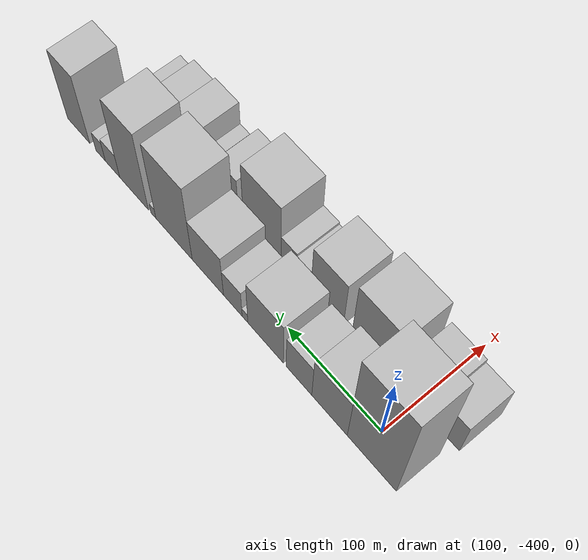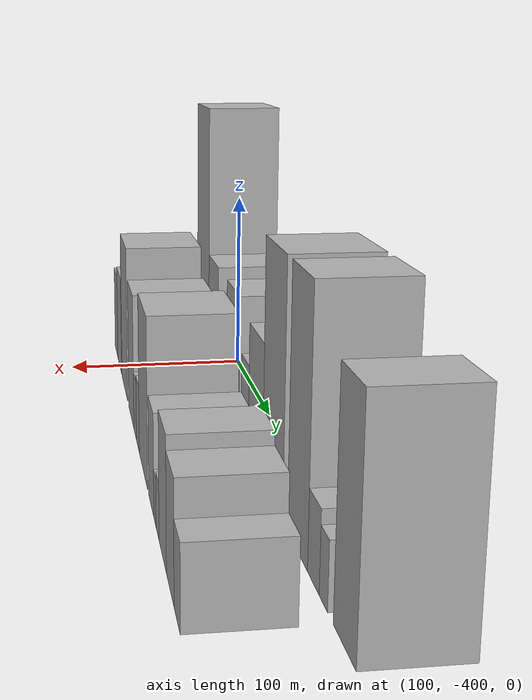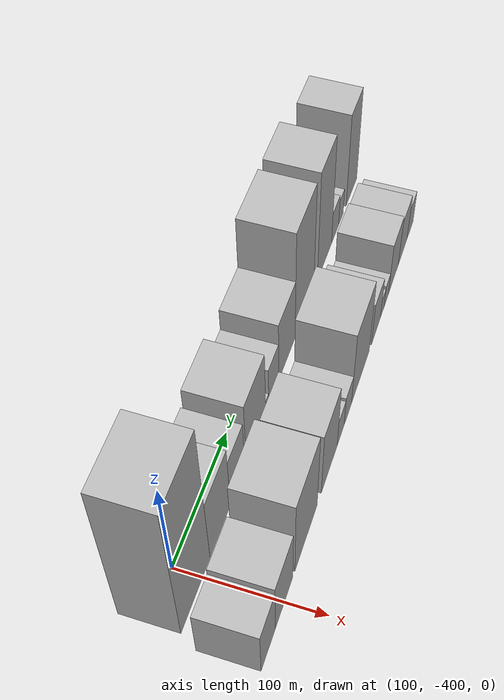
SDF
<sdf version="1.6">
 <world name="default">
  <model name="building_1">
   <static>1</static>
   <pose>100.0000 -411.8144 0 0.000000 0.000000 0.000000</pose>
   <link name="link">
    <pose>0 0 76.50 0 0 0</pose>
    <collision name="collision"><geometry><box><size>40.0000 50.3711 153.0000</size></box></geometry></collision>
    <visual name="visual">
     <cast_shadows>0</cast_shadows>
     <geometry><box><size>40.0000 50.3711 153.0000</size></box></geometry>
     <material>
      <script>
       <uri>model://HANNAS_wall/materials/scripts</uri>
       <uri>model://HANNAS_wall/materials/textures</uri>
       <name>vrc/HANNAS_wall</name>
      </script>
     </material>
    </visual>
   </link>
  </model>
  <model name="building_2">
   <static>1</static>
   <pose>100.0000 -367.8173 0 0.000000 0.000000 0.000000</pose>
   <link name="link">
    <pose>0 0 34.50 0 0 0</pose>
    <collision name="collision"><geometry><box><size>40.0000 37.6232 69.0000</size></box></geometry></collision>
    <visual name="visual">
     <cast_shadows>0</cast_shadows>
     <geometry><box><size>40.0000 37.6232 69.0000</size></box></geometry>
     <material>
      <script>
       <uri>model://HANNAS_wall/materials/scripts</uri>
       <uri>model://HANNAS_wall/materials/textures</uri>
       <name>vrc/HANNAS_wall</name>
      </script>
     </material>
    </visual>
   </link>
  </model>
  <model name="building_3">
   <static>1</static>
   <pose>100.0000 -335.0411 0 0.000000 0.000000 0.000000</pose>
   <link name="link">
    <pose>0 0 27.00 0 0 0</pose>
    <collision name="collision"><geometry><box><size>40.0000 27.9292 54.0000</size></box></geometry></collision>
    <visual name="visual">
     <cast_shadows>0</cast_shadows>
     <geometry><box><size>40.0000 27.9292 54.0000</size></box></geometry>
     <material>
      <script>
       <uri>model://HANNAS_wall/materials/scripts</uri>
       <uri>model://HANNAS_wall/materials/textures</uri>
       <name>vrc/HANNAS_wall</name>
      </script>
     </material>
    </visual>
   </link>
  </model>
  <model name="building_4">
   <static>1</static>
   <pose>100.0000 -298.1483 0 0.000000 0.000000 0.000000</pose>
   <link name="link">
    <pose>0 0 34.50 0 0 0</pose>
    <collision name="collision"><geometry><box><size>40.0000 39.8563 69.0000</size></box></geometry></collision>
    <visual name="visual">
     <cast_shadows>0</cast_shadows>
     <geometry><box><size>40.0000 39.8563 69.0000</size></box></geometry>
     <material>
      <script>
       <uri>model://HANNAS_wall/materials/scripts</uri>
       <uri>model://HANNAS_wall/materials/textures</uri>
       <name>vrc/HANNAS_wall</name>
      </script>
     </material>
    </visual>
   </link>
  </model>
  <model name="building_5">
   <static>1</static>
   <pose>100.0000 -274.9726 0 0.000000 0.000000 0.000000</pose>
   <link name="link">
    <pose>0 0 7.50 0 0 0</pose>
    <collision name="collision"><geometry><box><size>40.0000 6.4951 15.0000</size></box></geometry></collision>
    <visual name="visual">
     <cast_shadows>0</cast_shadows>
     <geometry><box><size>40.0000 6.4951 15.0000</size></box></geometry>
     <material>
      <script>
       <uri>model://HANNAS_wall/materials/scripts</uri>
       <uri>model://HANNAS_wall/materials/textures</uri>
       <name>vrc/HANNAS_wall</name>
      </script>
     </material>
    </visual>
   </link>
  </model>
  <model name="building_6">
   <static>1</static>
   <pose>100.0000 -261.0082 0 0.000000 0.000000 0.000000</pose>
   <link name="link">
    <pose>0 0 21.00 0 0 0</pose>
    <collision name="collision"><geometry><box><size>40.0000 21.4337 42.0000</size></box></geometry></collision>
    <visual name="visual">
     <cast_shadows>0</cast_shadows>
     <geometry><box><size>40.0000 21.4337 42.0000</size></box></geometry>
     <material>
      <script>
       <uri>model://HANNAS_wall/materials/scripts</uri>
       <uri>model://HANNAS_wall/materials/textures</uri>
       <name>vrc/HANNAS_wall</name>
      </script>
     </material>
    </visual>
   </link>
  </model>
  <model name="building_7">
   <static>1</static>
   <pose>100.0000 -231.8019 0 0.000000 0.000000 0.000000</pose>
   <link name="link">
    <pose>0 0 31.50 0 0 0</pose>
    <collision name="collision"><geometry><box><size>40.0000 36.9789 63.0000</size></box></geometry></collision>
    <visual name="visual">
     <cast_shadows>0</cast_shadows>
     <geometry><box><size>40.0000 36.9789 63.0000</size></box></geometry>
     <material>
      <script>
       <uri>model://HANNAS_wall/materials/scripts</uri>
       <uri>model://HANNAS_wall/materials/textures</uri>
       <name>vrc/HANNAS_wall</name>
      </script>
     </material>
    </visual>
   </link>
  </model>
  <model name="building_8">
   <static>1</static>
   <pose>100.0000 -191.1744 0 0.000000 0.000000 0.000000</pose>
   <link name="link">
    <pose>0 0 55.50 0 0 0</pose>
    <collision name="collision"><geometry><box><size>40.0000 44.2762 111.0000</size></box></geometry></collision>
    <visual name="visual">
     <cast_shadows>0</cast_shadows>
     <geometry><box><size>40.0000 44.2762 111.0000</size></box></geometry>
     <material>
      <script>
       <uri>model://HANNAS_wall/materials/scripts</uri>
       <uri>model://HANNAS_wall/materials/textures</uri>
       <name>vrc/HANNAS_wall</name>
      </script>
     </material>
    </visual>
   </link>
  </model>
  <model name="building_9">
   <static>1</static>
   <pose>100.0000 -165.9184 0 0.000000 0.000000 0.000000</pose>
   <link name="link">
    <pose>0 0 7.50 0 0 0</pose>
    <collision name="collision"><geometry><box><size>40.0000 6.2359 15.0000</size></box></geometry></collision>
    <visual name="visual">
     <cast_shadows>0</cast_shadows>
     <geometry><box><size>40.0000 6.2359 15.0000</size></box></geometry>
     <material>
      <script>
       <uri>model://HANNAS_wall/materials/scripts</uri>
       <uri>model://HANNAS_wall/materials/textures</uri>
       <name>vrc/HANNAS_wall</name>
      </script>
     </material>
    </visual>
   </link>
  </model>
  <model name="building_10">
   <static>1</static>
   <pose>100.0000 -141.6907 0 0.000000 0.000000 0.000000</pose>
   <link name="link">
    <pose>0 0 55.50 0 0 0</pose>
    <collision name="collision"><geometry><box><size>40.0000 36.2195 111.0000</size></box></geometry></collision>
    <visual name="visual">
     <cast_shadows>0</cast_shadows>
     <geometry><box><size>40.0000 36.2195 111.0000</size></box></geometry>
     <material>
      <script>
       <uri>model://HANNAS_wall/materials/scripts</uri>
       <uri>model://HANNAS_wall/materials/textures</uri>
       <name>vrc/HANNAS_wall</name>
      </script>
     </material>
    </visual>
   </link>
  </model>
  <model name="building_11">
   <static>1</static>
   <pose>100.0000 -114.3132 0 0.000000 0.000000 0.000000</pose>
   <link name="link">
    <pose>0 0 16.50 0 0 0</pose>
    <collision name="collision"><geometry><box><size>40.0000 18.5354 33.0000</size></box></geometry></collision>
    <visual name="visual">
     <cast_shadows>0</cast_shadows>
     <geometry><box><size>40.0000 18.5354 33.0000</size></box></geometry>
     <material>
      <script>
       <uri>model://HANNAS_wall/materials/scripts</uri>
       <uri>model://HANNAS_wall/materials/textures</uri>
       <name>vrc/HANNAS_wall</name>
      </script>
     </material>
    </visual>
   </link>
  </model>
  <model name="building_12">
   <static>1</static>
   <pose>100.0000 -98.8612 0 0.000000 0.000000 0.000000</pose>
   <link name="link">
    <pose>0 0 13.50 0 0 0</pose>
    <collision name="collision"><geometry><box><size>40.0000 12.3686 27.0000</size></box></geometry></collision>
    <visual name="visual">
     <cast_shadows>0</cast_shadows>
     <geometry><box><size>40.0000 12.3686 27.0000</size></box></geometry>
     <material>
      <script>
       <uri>model://HANNAS_wall/materials/scripts</uri>
       <uri>model://HANNAS_wall/materials/textures</uri>
       <name>vrc/HANNAS_wall</name>
      </script>
     </material>
    </visual>
   </link>
  </model>
  <model name="building_13">
   <static>1</static>
   <pose>100.0000 -69.9411 0 0.000000 0.000000 0.000000</pose>
   <link name="link">
    <pose>0 0 46.50 0 0 0</pose>
    <collision name="collision"><geometry><box><size>40.0000 29.4715 93.0000</size></box></geometry></collision>
    <visual name="visual">
     <cast_shadows>0</cast_shadows>
     <geometry><box><size>40.0000 29.4715 93.0000</size></box></geometry>
     <material>
      <script>
       <uri>model://HANNAS_wall/materials/scripts</uri>
       <uri>model://HANNAS_wall/materials/textures</uri>
       <name>vrc/HANNAS_wall</name>
      </script>
     </material>
    </visual>
   </link>
  </model>
  <model name="building_26">
   <static>1</static>
   <pose>152.0000 -430.6782 0 0.000000 0.000000 0.000000</pose>
   <link name="link">
    <pose>0 0 25.50 0 0 0</pose>
    <collision name="collision"><geometry><box><size>40.0000 26.6437 51.0000</size></box></geometry></collision>
    <visual name="visual">
     <cast_shadows>0</cast_shadows>
     <geometry><box><size>40.0000 26.6437 51.0000</size></box></geometry>
     <material>
      <script>
       <uri>model://HANNAS_wall/materials/scripts</uri>
       <uri>model://HANNAS_wall/materials/textures</uri>
       <name>vrc/HANNAS_wall</name>
      </script>
     </material>
    </visual>
   </link>
  </model>
  <model name="building_27">
   <static>1</static>
   <pose>152.0000 -400.2870 0 0.000000 0.000000 0.000000</pose>
   <link name="link">
    <pose>0 0 28.50 0 0 0</pose>
    <collision name="collision"><geometry><box><size>40.0000 34.1387 57.0000</size></box></geometry></collision>
    <visual name="visual">
     <cast_shadows>0</cast_shadows>
     <geometry><box><size>40.0000 34.1387 57.0000</size></box></geometry>
     <material>
      <script>
       <uri>model://HANNAS_wall/materials/scripts</uri>
       <uri>model://HANNAS_wall/materials/textures</uri>
       <name>vrc/HANNAS_wall</name>
      </script>
     </material>
    </visual>
   </link>
  </model>
  <model name="building_28">
   <static>1</static>
   <pose>152.0000 -355.7725 0 0.000000 0.000000 0.000000</pose>
   <link name="link">
    <pose>0 0 42.00 0 0 0</pose>
    <collision name="collision"><geometry><box><size>40.0000 46.8903 84.0000</size></box></geometry></collision>
    <visual name="visual">
     <cast_shadows>0</cast_shadows>
     <geometry><box><size>40.0000 46.8903 84.0000</size></box></geometry>
     <material>
      <script>
       <uri>model://HANNAS_wall/materials/scripts</uri>
       <uri>model://HANNAS_wall/materials/textures</uri>
       <name>vrc/HANNAS_wall</name>
      </script>
     </material>
    </visual>
   </link>
  </model>
  <model name="building_29">
   <static>1</static>
   <pose>152.0000 -305.3131 0 0.000000 0.000000 0.000000</pose>
   <link name="link">
    <pose>0 0 34.50 0 0 0</pose>
    <collision name="collision"><geometry><box><size>40.0000 36.0286 69.0000</size></box></geometry></collision>
    <visual name="visual">
     <cast_shadows>0</cast_shadows>
     <geometry><box><size>40.0000 36.0286 69.0000</size></box></geometry>
     <material>
      <script>
       <uri>model://HANNAS_wall/materials/scripts</uri>
       <uri>model://HANNAS_wall/materials/textures</uri>
       <name>vrc/HANNAS_wall</name>
      </script>
     </material>
    </visual>
   </link>
  </model>
  <model name="building_30">
   <static>1</static>
   <pose>152.0000 -279.1874 0 0.000000 0.000000 0.000000</pose>
   <link name="link">
    <pose>0 0 15.00 0 0 0</pose>
    <collision name="collision"><geometry><box><size>40.0000 16.2227 30.0000</size></box></geometry></collision>
    <visual name="visual">
     <cast_shadows>0</cast_shadows>
     <geometry><box><size>40.0000 16.2227 30.0000</size></box></geometry>
     <material>
      <script>
       <uri>model://HANNAS_wall/materials/scripts</uri>
       <uri>model://HANNAS_wall/materials/textures</uri>
       <name>vrc/HANNAS_wall</name>
      </script>
     </material>
    </visual>
   </link>
  </model>
  <model name="building_31">
   <static>1</static>
   <pose>152.0000 -262.1687 0 0.000000 0.000000 0.000000</pose>
   <link name="link">
    <pose>0 0 16.50 0 0 0</pose>
    <collision name="collision"><geometry><box><size>40.0000 17.8147 33.0000</size></box></geometry></collision>
    <visual name="visual">
     <cast_shadows>0</cast_shadows>
     <geometry><box><size>40.0000 17.8147 33.0000</size></box></geometry>
     <material>
      <script>
       <uri>model://HANNAS_wall/materials/scripts</uri>
       <uri>model://HANNAS_wall/materials/textures</uri>
       <name>vrc/HANNAS_wall</name>
      </script>
     </material>
    </visual>
   </link>
  </model>
  <model name="building_32">
   <static>1</static>
   <pose>152.0000 -230.9816 0 0.000000 0.000000 0.000000</pose>
   <link name="link">
    <pose>0 0 39.00 0 0 0</pose>
    <collision name="collision"><geometry><box><size>40.0000 44.5595 78.0000</size></box></geometry></collision>
    <visual name="visual">
     <cast_shadows>0</cast_shadows>
     <geometry><box><size>40.0000 44.5595 78.0000</size></box></geometry>
     <material>
      <script>
       <uri>model://HANNAS_wall/materials/scripts</uri>
       <uri>model://HANNAS_wall/materials/textures</uri>
       <name>vrc/HANNAS_wall</name>
      </script>
     </material>
    </visual>
   </link>
  </model>
  <model name="building_33">
   <static>1</static>
   <pose>152.0000 -190.8037 0 0.000000 0.000000 0.000000</pose>
   <link name="link">
    <pose>0 0 22.50 0 0 0</pose>
    <collision name="collision"><geometry><box><size>40.0000 23.7963 45.0000</size></box></geometry></collision>
    <visual name="visual">
     <cast_shadows>0</cast_shadows>
     <geometry><box><size>40.0000 23.7963 45.0000</size></box></geometry>
     <material>
      <script>
       <uri>model://HANNAS_wall/materials/scripts</uri>
       <uri>model://HANNAS_wall/materials/textures</uri>
       <name>vrc/HANNAS_wall</name>
      </script>
     </material>
    </visual>
   </link>
  </model>
  <model name="building_34">
   <static>1</static>
   <pose>152.0000 -173.8862 0 0.000000 0.000000 0.000000</pose>
   <link name="link">
    <pose>0 0 10.50 0 0 0</pose>
    <collision name="collision"><geometry><box><size>40.0000 10.0388 21.0000</size></box></geometry></collision>
    <visual name="visual">
     <cast_shadows>0</cast_shadows>
     <geometry><box><size>40.0000 10.0388 21.0000</size></box></geometry>
     <material>
      <script>
       <uri>model://HANNAS_wall/materials/scripts</uri>
       <uri>model://HANNAS_wall/materials/textures</uri>
       <name>vrc/HANNAS_wall</name>
      </script>
     </material>
    </visual>
   </link>
  </model>
  <model name="building_35">
   <static>1</static>
   <pose>152.0000 -162.9440 0 0.000000 0.000000 0.000000</pose>
   <link name="link">
    <pose>0 0 12.00 0 0 0</pose>
    <collision name="collision"><geometry><box><size>40.0000 11.8456 24.0000</size></box></geometry></collision>
    <visual name="visual">
     <cast_shadows>0</cast_shadows>
     <geometry><box><size>40.0000 11.8456 24.0000</size></box></geometry>
     <material>
      <script>
       <uri>model://HANNAS_wall/materials/scripts</uri>
       <uri>model://HANNAS_wall/materials/textures</uri>
       <name>vrc/HANNAS_wall</name>
      </script>
     </material>
    </visual>
   </link>
  </model>
  <model name="building_36">
   <static>1</static>
   <pose>152.0000 -142.9809 0 0.000000 0.000000 0.000000</pose>
   <link name="link">
    <pose>0 0 27.00 0 0 0</pose>
    <collision name="collision"><geometry><box><size>40.0000 28.0806 54.0000</size></box></geometry></collision>
    <visual name="visual">
     <cast_shadows>0</cast_shadows>
     <geometry><box><size>40.0000 28.0806 54.0000</size></box></geometry>
     <material>
      <script>
       <uri>model://HANNAS_wall/materials/scripts</uri>
       <uri>model://HANNAS_wall/materials/textures</uri>
       <name>vrc/HANNAS_wall</name>
      </script>
     </material>
    </visual>
   </link>
  </model>
  <model name="building_37">
   <static>1</static>
   <pose>152.0000 -115.9378 0 0.000000 0.000000 0.000000</pose>
   <link name="link">
    <pose>0 0 24.00 0 0 0</pose>
    <collision name="collision"><geometry><box><size>40.0000 26.0056 48.0000</size></box></geometry></collision>
    <visual name="visual">
     <cast_shadows>0</cast_shadows>
     <geometry><box><size>40.0000 26.0056 48.0000</size></box></geometry>
     <material>
      <script>
       <uri>model://HANNAS_wall/materials/scripts</uri>
       <uri>model://HANNAS_wall/materials/textures</uri>
       <name>vrc/HANNAS_wall</name>
      </script>
     </material>
    </visual>
   </link>
  </model>
  <model name="building_38">
   <static>1</static>
   <pose>152.0000 -93.6274 0 0.000000 0.000000 0.000000</pose>
   <link name="link">
    <pose>0 0 16.50 0 0 0</pose>
    <collision name="collision"><geometry><box><size>40.0000 18.6151 33.0000</size></box></geometry></collision>
    <visual name="visual">
     <cast_shadows>0</cast_shadows>
     <geometry><box><size>40.0000 18.6151 33.0000</size></box></geometry>
     <material>
      <script>
       <uri>model://HANNAS_wall/materials/scripts</uri>
       <uri>model://HANNAS_wall/materials/textures</uri>
       <name>vrc/HANNAS_wall</name>
      </script>
     </material>
    </visual>
   </link>
  </model>
 </world>
</sdf>
